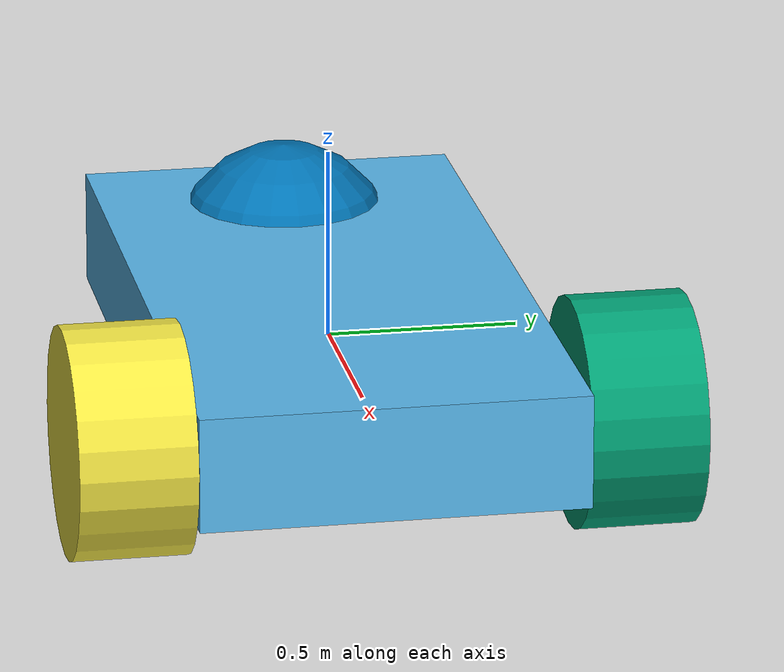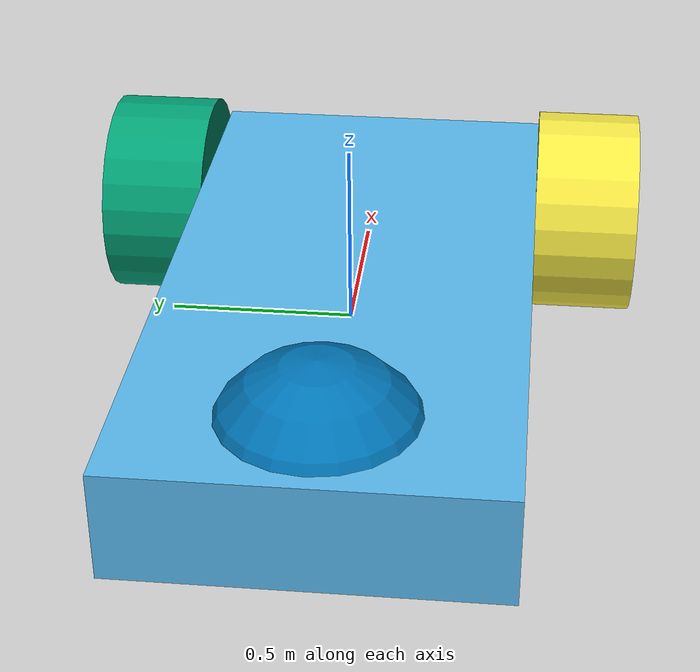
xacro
<?xml version="1.0" ?>
<robot xmlns:xacro="http://www.ros.org/wiki/xacro" xmlns:ignition="http://www.ros.org/wiki/xacro" name="rover">
  <!-- settings -->
  <xacro:property name="IMU_HZ" value="100.0"/>
  <xacro:property name="ODOM_HZ" value="100.0"/>
  <xacro:property name="ODOMETER_HZ" value="1.0"/>
  <xacro:property name="POSE_HZ" value="100.0"/>

  <xacro:property name="WHEEL_RADIUS" value="0.3"/>
  <xacro:property name="WHEEL_THICKNESS" value="0.3"/>
  <xacro:property name="LEN" value="2.0"/>
  <xacro:property name="WIDTH" value="1.0"/>
  <!-- const -->
  <xacro:property name="CWD" value="/home/ubuntu/dev_ws/src/robot_description"/>
  <xacro:property name="PI" value="3.1415926535897931"/>
  <xacro:property name="DUMMY_LINK_NAME" value="base_footprint"/>
  <!-- incl -->
  <xacro:include filename="${CWD}/utils/materials.xacro" />
  <xacro:include filename="${CWD}/utils/basic_links.xacro" />
  <!-- dummy -->
  <link name="${DUMMY_LINK_NAME}"/>
  <!-- base -->
  <xacro:box_link name="base_link" mass="2" x="${LEN}" y="${WIDTH}" z="${WHEEL_RADIUS}"/>
  <joint name="dummy_joint" type="fixed">
     <parent link="${DUMMY_LINK_NAME}"/>
     <child link="base_link"/>
  </joint>
  <gazebo reference='base_link'>
    <xacro:red/>
  </gazebo>
  <!-- wheels -->
  <xacro:macro name="wheel" params="name x y">
    <xacro:cylinder_link name="${name}_link" mass="1.2" radius="${WHEEL_RADIUS}" length="${WHEEL_THICKNESS}"/>
    <joint name="${name}_joint" type="continuous">
      <origin xyz="${x} ${y} 0.0" rpy="${PI/2} ${PI} ${PI}"/>
      <parent link="base_link"/>
      <child link="${name}_link"/>
      <axis xyz="0.0 0.0 1.0"/>
    </joint>
  </xacro:macro>
  <xacro:wheel name="fl" x="${LEN/2-WHEEL_RADIUS}" y="${WIDTH/2+WHEEL_THICKNESS/2}"/>
  <xacro:wheel name="fr" x="${LEN/2-WHEEL_RADIUS}" y="${-WIDTH/2-WHEEL_THICKNESS/2}"/>
  <!-- caster -->
  <xacro:sphere_link name="caster_link" mass="1.2" radius="${WHEEL_RADIUS}"/>
  <joint name="caster_joint" type="fixed">
      <origin xyz="${-LEN/2+WHEEL_RADIUS} 0 0" rpy="0 0 0"/>
      <parent link="base_link"/>
      <child link="caster_link"/>
  </joint>
  <gazebo reference="caster_link">
    <mu1>0</mu1>
    <mu2>0</mu2>
  </gazebo>
  <!-- plugins -->
  <gazebo>
    <plugin
      filename="ignition-gazebo-diff-drive-system"
      name="ignition::gazebo::systems::DiffDrive">
      <left_joint>fl_joint</left_joint>
      <right_joint>fr_joint</right_joint>
      <wheel_separation>${WIDTH}</wheel_separation>
      <wheel_radius>${WHEEL_RADIUS}</wheel_radius>
      <odom_publish_frequency>${ODOM_HZ}</odom_publish_frequency>
      <topic>cmd_vel</topic>
    </plugin>
    <plugin filename="ignition-gazebo-pose-publisher-system" name="ignition::gazebo::systems::PosePublisher">
      <publish_link_pose>false</publish_link_pose>
      <publish_collision_pose>false</publish_collision_pose>
      <publish_visual_pose>false</publish_visual_pose>
      <publish_sensor_pose>false</publish_sensor_pose>
      <publish_nested_model_pose>true</publish_nested_model_pose>
      <update_frequency>${POSE_HZ}</update_frequency>
      <use_pose_vector_msg>false</use_pose_vector_msg>
    </plugin>
  </gazebo>
  <!-- sensors -->
  <gazebo reference="base_link">
    <sensor name="imu_sensor" type="imu">
      <always_on>true</always_on>
      <update_rate>${IMU_HZ}</update_rate>
      <visualize>true</visualize>
      <topic>/model/rover/imu</topic>
      <angular_velocity>
        <x><noise type="none"/></x>
        <y><noise type="none"/></y>
        <z><noise type="none"/></z>
      </angular_velocity>
      <linear_acceleration>
        <x><noise type="none"/></x>
        <y><noise type="none"/></y>
        <z><noise type="none"/></z>
      </linear_acceleration>
    </sensor>
  </gazebo>
  <gazebo reference="base_link">
    <sensor name="odometer" type="custom" ignition:type="odometer">
      <always_on>1</always_on>
      <update_rate>30</update_rate>
      <visualize>true</visualize>
      <topic>/model/rover/odometer</topic>
      <ignition:odometer>
        <noise type="gaussian">
          <mean>0.00001</mean>
          <stddev>0.00001</stddev>
        </noise>
      </ignition:odometer>
    </sensor>
  </gazebo>
  <gazebo reference="base_link">
    <sensor name="X150" type="custom" ignition:type="X150">
      <always_on>1</always_on>
      <update_rate>30</update_rate>
      <visualize>true</visualize>
      <topic>/model/rover/X150</topic>
      <ignition:X150>
        <noise type="gaussian">
          <mean>0.00001</mean>
          <stddev>0.00001</stddev>
        </noise>
      </ignition:X150>
    </sensor>
  </gazebo>
</robot>

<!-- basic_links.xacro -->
<robot xmlns:xacro="http://www.ros.org/wiki/xacro" >
    <!-- Basic inertia macros https://en.wikipedia.org/wiki/List_of_moments_of_inertia -->
    <xacro:macro name="inertial_sphere" params="mass radius *origin">
        <inertial>
            <xacro:insert_block name="origin"/>
            <mass value="${mass}" />
            <inertia ixx="${(2/5) * mass * (radius*radius)}" ixy="0.0" ixz="0.0"
                    iyy="${(2/5) * mass * (radius*radius)}" iyz="0.0"
                    izz="${(2/5) * mass * (radius*radius)}" />
        </inertial>
    </xacro:macro>

    <xacro:macro name="inertial_box" params="mass x y z *origin">
        <inertial>
            <xacro:insert_block name="origin"/>
            <mass value="${mass}" />
            <inertia ixx="${(1/12) * mass * (y*y+z*z)}" ixy="0.0" ixz="0.0"
                    iyy="${(1/12) * mass * (x*x+z*z)}" iyz="0.0"
                    izz="${(1/12) * mass * (x*x+y*y)}" />
        </inertial>
    </xacro:macro>

    <xacro:macro name="inertial_cylinder" params="mass length radius *origin">
        <inertial>
            <xacro:insert_block name="origin"/>
            <mass value="${mass}" />
            <inertia ixx="${(1/12) * mass * (3*radius*radius + length*length)}" ixy="0.0" ixz="0.0"
                    iyy="${(1/12) * mass * (3*radius*radius + length*length)}" iyz="0.0"
                    izz="${(1/2) * mass * (radius*radius)}" />
        </inertial>
    </xacro:macro>

    <!-- Basic link macros -->
    <xacro:macro name="sphere_link" params="name mass radius">
        <link name="${name}">
            <xacro:inertial_sphere mass="${mass}" radius="${radius}">
                <origin xyz="0 0 0" rpy="0 0 0"/>
            </xacro:inertial_sphere>
            <visual>
                <geometry>
                    <sphere radius="${radius}"/>
                </geometry>
            </visual>
            <collision>
                <geometry>
                    <sphere radius="${radius}"/>
                </geometry>
            </collision>
        </link>
    </xacro:macro>

    <xacro:macro name="box_link" params="name mass x y z">
        <link name="${name}">
            <xacro:inertial_box mass="${mass}" x="${x}" y="${y}" z="${z}">
                <origin xyz="0 0 0" rpy="0 0 0"/>
            </xacro:inertial_box>
            <visual>
                <geometry>
                    <box size="${x} ${y} ${z}"/>
                </geometry>
            </visual>
            <collision>
                <geometry>
                    <box size="${x} ${y} ${z}"/>
                </geometry>
            </collision>
        </link>
   </xacro:macro>

    <xacro:macro name="cylinder_link" params="name mass length radius">
        <link name="${name}">
            <xacro:inertial_cylinder mass="${mass}" length="${length}" radius="${radius}">
                <origin xyz="0 0 0" rpy="0 0 0"/>
            </xacro:inertial_cylinder>
            <visual>
                <geometry>
                    <cylinder length="${length}" radius="${radius}"/>
                </geometry>
            </visual>
            <collision>
                <geometry>
                    <cylinder length="${length}" radius="${radius}"/>
                </geometry>
            </collision>
        </link>
   </xacro:macro>
</robot>
